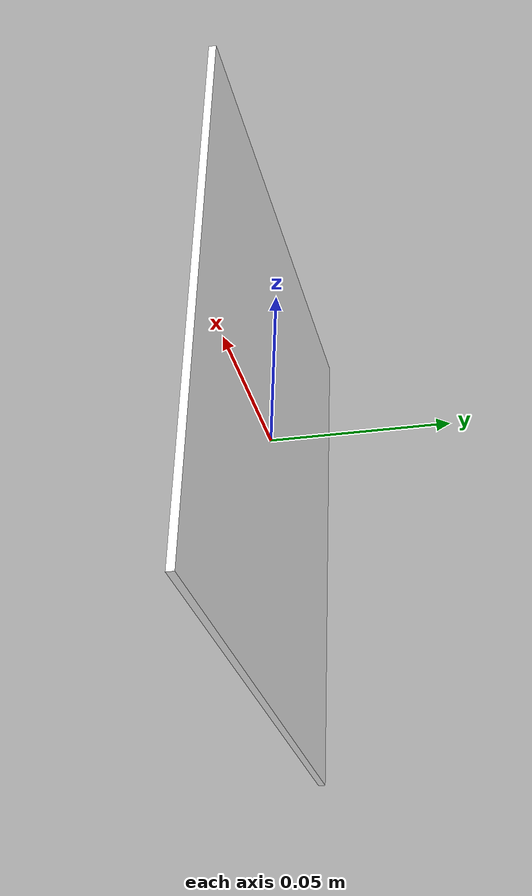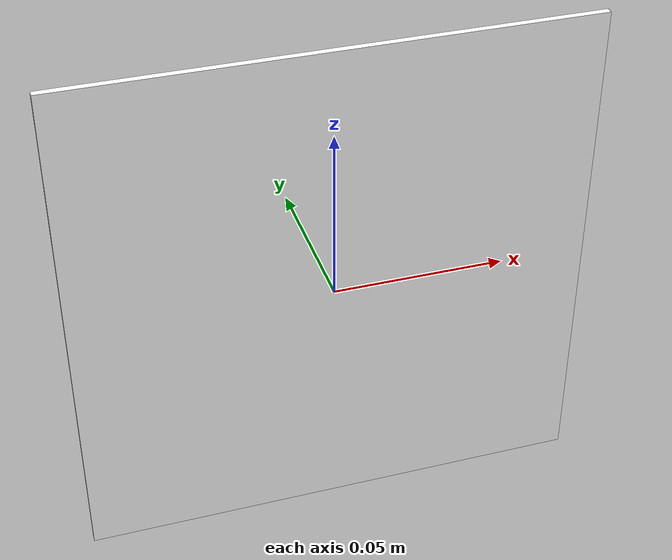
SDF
<?xml version="1.0"?>
<sdf version="1.8">
  <model name="aruco_marker_3">
    <static>true</static>
    <link name="link">
      <visual name="visual">
        <geometry>
          <!-- 0.15 m marker panel, 2 mm thick, thin in Y (facing ±Y by default) -->
          <box>
            <size>0.15 0.002 0.15</size>
          </box>
        </geometry>
        <material>
          <ambient>1 1 1 1</ambient>
          <diffuse>1 1 1 1</diffuse>
          <specular>0 0 0 1</specular>
          <pbr>
            <metal>
              <albedo_map>model://aruco_marker_3/materials/textures/aruco_3.png</albedo_map>
              <metalness>0.0</metalness>
              <roughness>1.0</roughness>
            </metal>
          </pbr>
        </material>
      </visual>
      <collision name="collision">
        <geometry>
          <box>
            <size>0.15 0.002 0.15</size>
          </box>
        </geometry>
      </collision>
    </link>
  </model>
</sdf>
